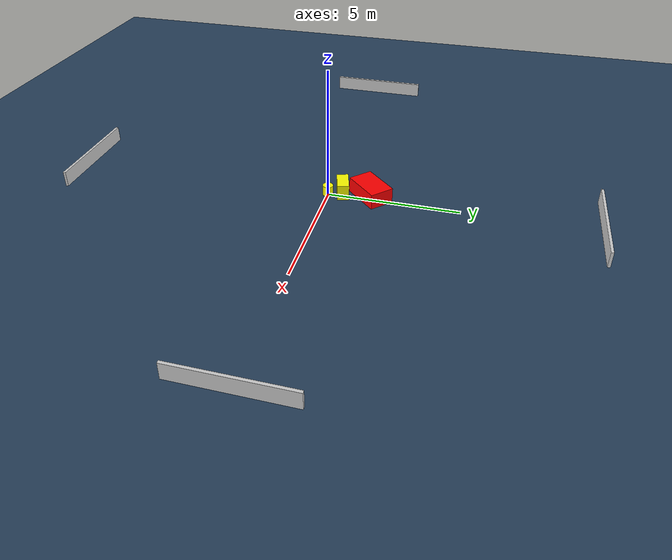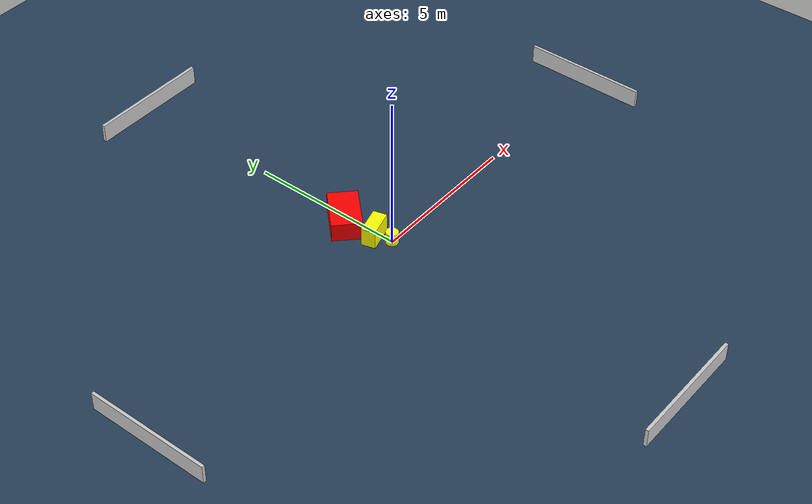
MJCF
<?xml version="1.0" ?>
<mujoco model="generated_environment">
  <option timestep="0.01" integrator="RK4" cone="elliptic"/>
  <default>
    <geom density="1"/>
  </default>
  <asset>
    <texture builtin="gradient" height="3072" name="skybox" rgb1="0.3 0.5 0.7" rgb2="0 0 0" type="skybox" width="512"/>
    <texture builtin="checker" height="300" name="groundplane" rgb1="0.2 0.3 0.4" rgb2="0.1 0.2 0.3" type="2d" width="300"/>
    <material name="groundplane" reflectance="0.2" texrepeat="5 5" texture="groundplane"/>
  </asset>
  <worldbody>
    <light dir="0 0 -1" directional="true" pos="0 0 1.5"/>
    <geom condim="3" friction="0.5 0.005 0.001" material="groundplane" name="floor" pos="0 0 0" size="0 0 0.05" type="plane"/>
    <body name="walls">
      <geom name="wall_1" condim="4" pos="-10.0 0.0 0.3" rgba="0.800000011920929 0.800000011920929 0.800000011920929 1.0" size="0.05 2.0 0.3" type="box"/>
      <geom name="wall_2" condim="4" pos="10.0 0.0 0.3" rgba="0.800000011920929 0.800000011920929 0.800000011920929 1.0" size="0.05 2.0 0.3" type="box"/>
      <geom name="wall_3" condim="4" pos="0.0 -10.0 0.3" rgba="0.800000011920929 0.800000011920929 0.800000011920929 1.0" size="2.0 0.05 0.3" type="box"/>
      <geom name="wall_4" condim="4" pos="0.0 10.0 0.3" rgba="0.800000011920929 0.800000011920929 0.800000011920929 1.0" size="2.0 0.05 0.3" type="box"/>
    </body>
    <body name="robot">
      <joint name="joint_x" type="slide" pos="0 0 0" axis="1 0 0"/>
      <joint name="joint_y" type="slide" pos="0 0 0" axis="0 1 0"/>
      <geom name="robot" type="cylinder" pos="0.0 0.0 0.2" size="0.2 0.2 0.0" mass="5.0" friction="1.0 0.005 0.0001" condim="4" rgba="1.0 1.0 0.0 1.0"/>
    </body>
    <body name="obstacle_1_movable">
      <geom name="obstacle_1_movable" condim="4" pos="-0.16810308694814968 0.5379587450412084 0.3" euler="0 0 195.96819745385335" friction="0.0 0.005 0.001" rgba="1.0 1.0 0.0 1.0" size="0.4442855832723964 0.22120670681276797 0.3" type="box" mass="0.1"/>
      <joint type="free"/>
    </body>
    <body name="obstacle_2_static">
      <geom name="obstacle_2_static" condim="4" pos="-0.23841294538924554 1.6085983064926828 0.3" euler="0 0 45.71009642379005" friction="0.0 0.005 0.001" rgba="1.0 0.0 0.0 1.0" size="0.7437545659667915 0.4701427553856799 0.3" type="box"/>
    </body>
  </worldbody>
  <actuator>
    <motor name="actuator_x" joint="joint_x" gear="1" ctrlrange="-1 1"/>
    <motor name="actuator_y" joint="joint_y" gear="1" ctrlrange="-1 1"/>
  </actuator>
</mujoco>
